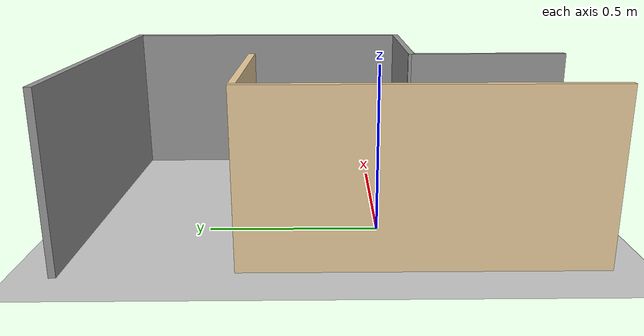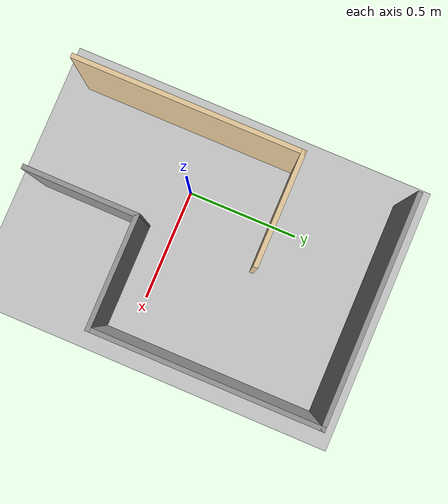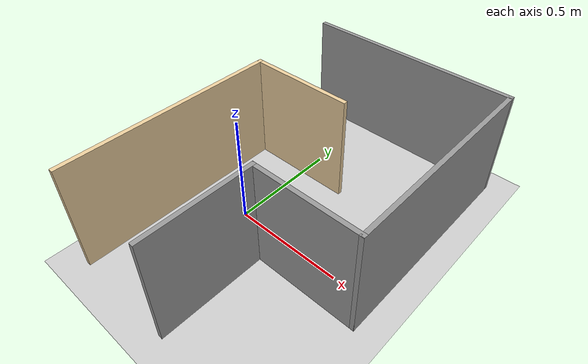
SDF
<sdf version="1.7">
 <world name="default">
  <light name="sun" type="directional">
   <pose>0 0 10 0 -0 0</pose>
   <diffuse>0.8 0.8 0.8 1</diffuse>
   <specular>0.2 0.2 0.2 1</specular>
   <attenuation>
    <range>1000</range>
    <constant>0.9</constant>
    <linear>0.01</linear>
    <quadratic>0.001</quadratic>
   </attenuation>
   <direction>-0.5 0.1 -0.9</direction>
  </light>
  <model name="ground_plane">
   <static>1</static>
   <link name="link">
    <collision name="collision">
     <geometry><plane><normal>0 0 1</normal><size>100 100</size></plane></geometry>
     <surface>
      <contact><collide_bitmask>65535</collide_bitmask></contact>
      <friction><ode><mu>100</mu><mu2>50</mu2></ode></friction>
     </surface>
    </collision>
    <visual name="visual">
     <cast_shadows>0</cast_shadows>
     <geometry><plane><normal>0 0 1</normal><size>100 100</size></plane></geometry>
     <material>
      <script><uri>file://media/materials/scripts/gazebo.material</uri><name>Gazebo/Grey</name></script>
     </material>
    </visual>
   </link>
  </model>
  <gravity>0 0 -9.8</gravity>
  <magnetic_field>6e-06 2.3e-05 -4.2e-05</magnetic_field>
  <atmosphere type="adiabatic"/>
  <physics type="ode">
   <max_step_size>0.001</max_step_size>
   <real_time_factor>1</real_time_factor>
   <real_time_update_rate>1000</real_time_update_rate>
  </physics>
  <scene><ambient>0.4 0.4 0.4 1</ambient><background>0.7 0.7 0.7 1</background><shadows>1</shadows></scene>
  <spherical_coordinates>
   <surface_model>EARTH_WGS84</surface_model>
   <latitude_deg>0</latitude_deg>
   <longitude_deg>0</longitude_deg>
   <elevation>0</elevation>
   <heading_deg>0</heading_deg>
  </spherical_coordinates>
  <model name="RosBot_World">
   <pose>2.03263 1.58507 0 0 -0 0</pose>
   <link name="Wall_16">
    <collision name="Wall_16_Collision">
     <geometry><box><size>0.995 0.02 0.5</size></box></geometry>
     <pose>0 0 0.25 0 -0 0</pose>
    </collision>
    <visual name="Wall_16_Visual">
     <pose>0 0 0.25 0 -0 0</pose>
     <geometry><box><size>0.995 0.02 0.5</size></box></geometry>
     <material>
      <script><uri>file://media/materials/scripts/gazebo.material</uri><name>Gazebo/Grey</name></script>
      <ambient>0.921569 0.807843 0.615686 1</ambient>
     </material>
     <meta><layer>0</layer></meta>
    </visual>
    <pose>-2.297 -1.68998 0 0 -0 1.5708</pose>
   </link>
   <link name="Wall_18">
    <collision name="Wall_18_Collision">
     <geometry><box><size>0.495 0.02 0.5</size></box></geometry>
     <pose>0 0 0.25 0 -0 0</pose>
    </collision>
    <visual name="Wall_18_Visual">
     <pose>0 0 0.25 0 -0 0</pose>
     <geometry><box><size>0.495 0.02 0.5</size></box></geometry>
     <material>
      <script><uri>file://media/materials/scripts/gazebo.material</uri><name>Gazebo/Grey</name></script>
      <ambient>0.921569 0.807843 0.615686 1</ambient>
     </material>
     <meta><layer>0</layer></meta>
    </visual>
    <pose>-2.0595 -1.20248 0 0 -0 0</pose>
   </link>
   <link name="Wall_25">
    <collision name="Wall_25_Collision">
     <geometry><box><size>0.495 0.02 0.5</size></box></geometry>
     <pose>0 0 0.25 0 -0 0</pose>
    </collision>
    <visual name="Wall_25_Visual">
     <pose>0 0 0.25 0 -0 0</pose>
     <geometry><box><size>0.495 0.02 0.5</size></box></geometry>
     <material>
      <script><uri>file://media/materials/scripts/gazebo.material</uri><name>Gazebo/Grey</name></script>
      <ambient>1 1 1 1</ambient>
     </material>
     <meta><layer>0</layer></meta>
    </visual>
    <pose>-1.821 -1.93998 0 0 -0 1.56659</pose>
   </link>
   <link name="Wall_27">
    <collision name="Wall_27_Collision">
     <geometry><box><size>0.495 0.02 0.5</size></box></geometry>
     <pose>0 0 0.25 0 -0 0</pose>
    </collision>
    <visual name="Wall_27_Visual">
     <pose>0 0 0.25 0 -0 0</pose>
     <geometry><box><size>0.495 0.02 0.5</size></box></geometry>
     <material>
      <script><uri>file://media/materials/scripts/gazebo.material</uri><name>Gazebo/Grey</name></script>
      <ambient>1 1 1 1</ambient>
     </material>
     <meta><layer>0</layer></meta>
    </visual>
    <pose>-1.5825 -1.70248 0 0 -0 0</pose>
   </link>
   <link name="Wall_29">
    <collision name="Wall_29_Collision">
     <geometry><box><size>0.995 0.02 0.5</size></box></geometry>
     <pose>0 0 0.25 0 -0 0</pose>
    </collision>
    <visual name="Wall_29_Visual">
     <pose>0 0 0.25 0 -0 0</pose>
     <geometry><box><size>0.995 0.02 0.5</size></box></geometry>
     <material>
      <script><uri>file://media/materials/scripts/gazebo.material</uri><name>Gazebo/Grey</name></script>
      <ambient>1 1 1 1</ambient>
     </material>
     <meta><layer>0</layer></meta>
    </visual>
    <pose>-1.345 -1.21498 0 0 -0 1.5708</pose>
   </link>
   <link name="Wall_32">
    <collision name="Wall_32_Collision">
     <geometry><box><size>0.995 0.02 0.5</size></box></geometry>
     <pose>0 0 0.25 0 -0 0</pose>
    </collision>
    <visual name="Wall_32_Visual">
     <pose>0 0 0.25 0 -0 0</pose>
     <geometry><box><size>0.995 0.02 0.5</size></box></geometry>
     <material>
      <script><uri>file://media/materials/scripts/gazebo.material</uri><name>Gazebo/Grey</name></script>
      <ambient>1 1 1 1</ambient>
     </material>
     <meta><layer>0</layer></meta>
    </visual>
    <pose>-1.8325 -0.72748 0 0 -0 3.14159</pose>
   </link>
   <static>1</static>
  </model>
 </world>
</sdf>
